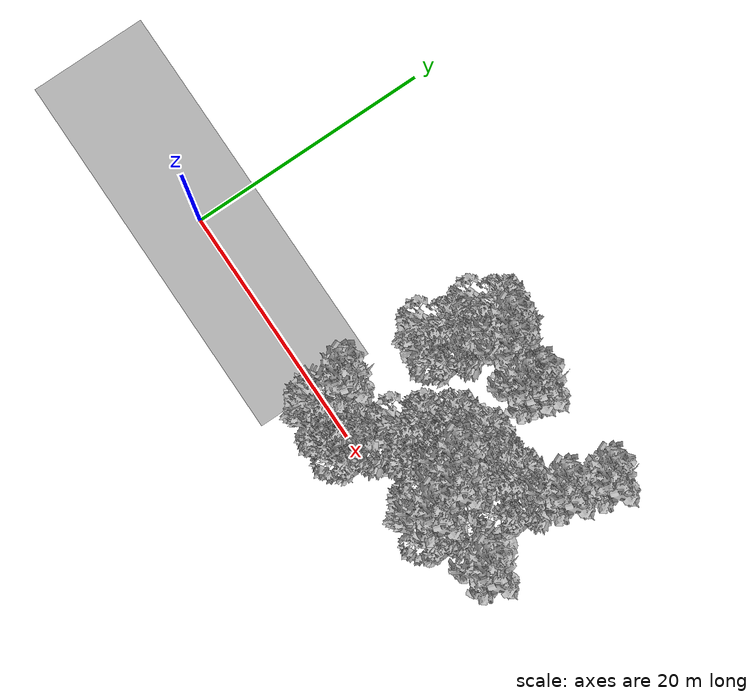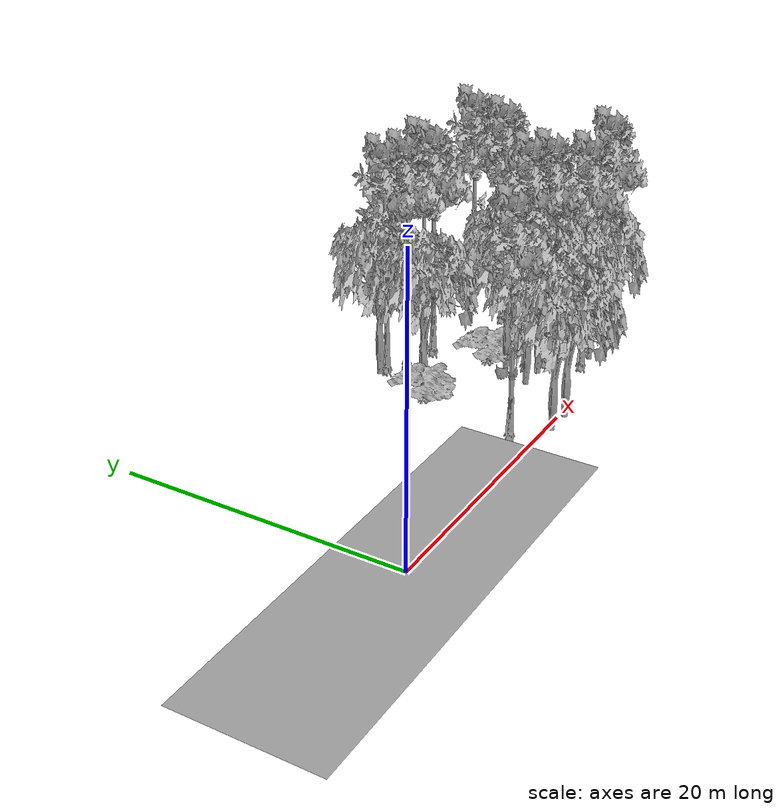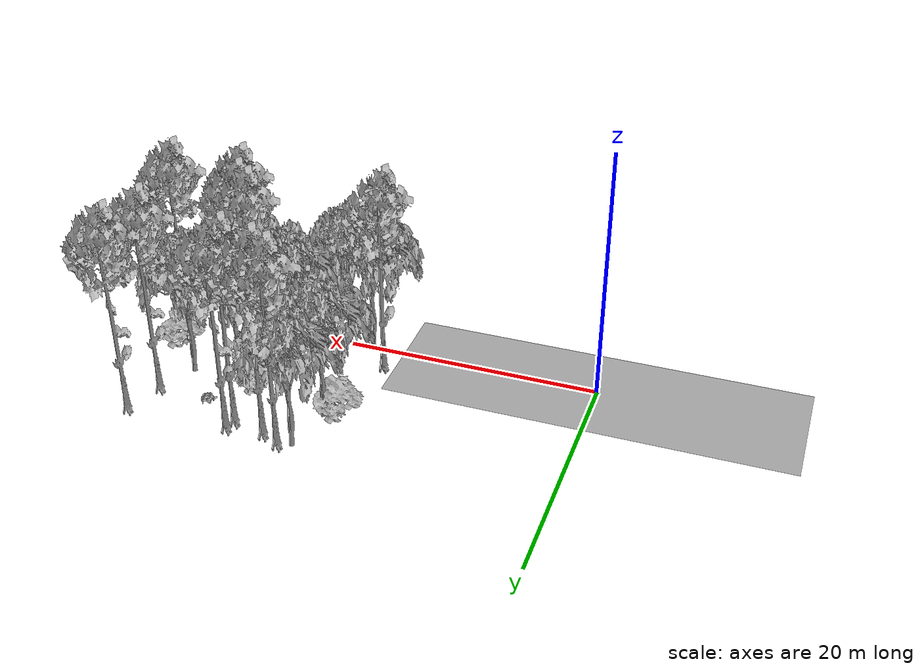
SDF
<sdf version="1.7">
 <world name="default">
  <model name="ground_plane">
   <static>1</static>
   <link name="link">
    <collision name="collision">
     <pose>-50 0 0 0 -0 0</pose>
     <geometry><plane><normal>0 0 1</normal><size>100 100</size></plane></geometry>
     <surface><contact><ode><min_depth>0.01</min_depth><max_vel>0</max_vel></ode></contact></surface>
    </collision>
    <visual name="grass">
     <cast_shadows>0</cast_shadows>
     <geometry>
      <mesh>
       <scale>0.5814285714285714 0.18142857142857144 0.1</scale>
       <uri>file://grass_plane/meshes/grass_plane.dae</uri>
      </mesh>
     </geometry>
    </visual>
   </link>
  </model>
  <model name="Tree 41">
   <static>1</static>
   <pose>17.475562049585122 8.796247360084557 0 1.57079 -0 0</pose>
   <link name="link">
    <collision name="collision">
     <geometry><mesh><scale>4 2.5 4</scale><uri>model://tree_1/meshes/tree_1.obj</uri></mesh></geometry>
    </collision>
    <visual name="visual">
     <geometry><mesh><scale>4 2.5 4</scale><uri>model://tree_1/meshes/tree_1.obj</uri></mesh></geometry>
    </visual>
   </link>
  </model>
  <model name="Tree 51">
   <static>1</static>
   <pose>27.102140427484386 4.259527870311061 0 1.57079 -0 0</pose>
   <link name="link">
    <collision name="collision">
     <geometry><mesh><scale>3.5 5 3.5</scale><uri>model://tree_9/meshes/tree_9.obj</uri></mesh></geometry>
    </collision>
    <visual name="visual">
     <geometry><mesh><scale>3.5 5 3.5</scale><uri>model://tree_9/meshes/tree_9.obj</uri></mesh></geometry>
    </visual>
   </link>
  </model>
  <model name="Tree 53">
   <static>1</static>
   <pose>32.85173136447975 13.201151705042417 0 1.57079 -0 0</pose>
   <link name="link">
    <collision name="collision">
     <geometry><mesh><scale>3.5 5 3.5</scale><uri>model://tree_9/meshes/tree_9.obj</uri></mesh></geometry>
    </collision>
    <visual name="visual">
     <geometry><mesh><scale>3.5 5 3.5</scale><uri>model://tree_9/meshes/tree_9.obj</uri></mesh></geometry>
    </visual>
   </link>
  </model>
  <model name="Tree 63">
   <static>1</static>
   <pose>30.214269453395474 7.372522549735457 0 1.57079 -0 0</pose>
   <link name="link">
    <collision name="collision">
     <geometry><mesh><scale>3.5 5 3.5</scale><uri>model://tree_2/meshes/tree_2.obj</uri></mesh></geometry>
    </collision>
    <visual name="visual">
     <geometry><mesh><scale>3.5 5 3.5</scale><uri>model://tree_2/meshes/tree_2.obj</uri></mesh></geometry>
    </visual>
   </link>
  </model>
  <model name="Tree 64">
   <static>1</static>
   <pose>16.69222684285866 1.8727051117373499 0 1.57079 -0 0</pose>
   <link name="link">
    <collision name="collision">
     <geometry><mesh><scale>3.5 5 3.5</scale><uri>model://tree_9/meshes/tree_9.obj</uri></mesh></geometry>
    </collision>
    <visual name="visual">
     <geometry><mesh><scale>3.5 5 3.5</scale><uri>model://tree_9/meshes/tree_9.obj</uri></mesh></geometry>
    </visual>
   </link>
  </model>
  <model name="Tree 97">
   <static>1</static>
   <pose>20.38719067207478 13.473502745662739 0 1.57079 -0 0</pose>
   <link name="link">
    <collision name="collision">
     <geometry><mesh><scale>3.5 5 3.5</scale><uri>model://tree_9/meshes/tree_9.obj</uri></mesh></geometry>
    </collision>
    <visual name="visual">
     <geometry><mesh><scale>3.5 5 3.5</scale><uri>model://tree_9/meshes/tree_9.obj</uri></mesh></geometry>
    </visual>
   </link>
  </model>
  <model name="Tree 100">
   <static>1</static>
   <pose>27.995859282677642 1.848697572924955 0 1.57079 -0 0</pose>
   <link name="link">
    <collision name="collision">
     <geometry><mesh><scale>3.5 5 3.5</scale><uri>model://tree_9/meshes/tree_9.obj</uri></mesh></geometry>
    </collision>
    <visual name="visual">
     <geometry><mesh><scale>3.5 5 3.5</scale><uri>model://tree_9/meshes/tree_9.obj</uri></mesh></geometry>
    </visual>
   </link>
  </model>
  <model name="Tree 117">
   <static>1</static>
   <pose>31.840548707857096 10.149907670665737 0 1.57079 -0 0</pose>
   <link name="link">
    <collision name="collision">
     <geometry><mesh><scale>3.5 5 3.5</scale><uri>model://tree_9/meshes/tree_9.obj</uri></mesh></geometry>
    </collision>
    <visual name="visual">
     <geometry><mesh><scale>3.5 5 3.5</scale><uri>model://tree_9/meshes/tree_9.obj</uri></mesh></geometry>
    </visual>
   </link>
  </model>
  <model name="Tree 119">
   <static>1</static>
   <pose>23.038592065510528 3.8503750211051866 0 1.57079 -0 0</pose>
   <link name="link">
    <collision name="collision">
     <geometry><mesh><scale>3.5 5 3.5</scale><uri>model://tree_2/meshes/tree_2.obj</uri></mesh></geometry>
    </collision>
    <visual name="visual">
     <geometry><mesh><scale>3.5 5 3.5</scale><uri>model://tree_2/meshes/tree_2.obj</uri></mesh></geometry>
    </visual>
   </link>
  </model>
  <model name="Tree 153">
   <static>1</static>
   <pose>18.33977524674306 -0.3360170800980562 0 1.57079 -0 0</pose>
   <link name="link">
    <collision name="collision">
     <geometry><mesh><scale>3.5 5 3.5</scale><uri>model://tree_2/meshes/tree_2.obj</uri></mesh></geometry>
    </collision>
    <visual name="visual">
     <geometry><mesh><scale>3.5 5 3.5</scale><uri>model://tree_2/meshes/tree_2.obj</uri></mesh></geometry>
    </visual>
   </link>
  </model>
  <model name="Tree 171">
   <static>1</static>
   <pose>19.122009015469843 13.346835189542073 0 1.57079 -0 0</pose>
   <link name="link">
    <collision name="collision">
     <geometry><mesh><scale>3.5 5 3.5</scale><uri>model://tree_2/meshes/tree_2.obj</uri></mesh></geometry>
    </collision>
    <visual name="visual">
     <geometry><mesh><scale>3.5 5 3.5</scale><uri>model://tree_2/meshes/tree_2.obj</uri></mesh></geometry>
    </visual>
   </link>
  </model>
  <model name="Tree 173">
   <static>1</static>
   <pose>25.866168044715536 5.2408018889622205 0 1.57079 -0 0</pose>
   <link name="link">
    <collision name="collision">
     <geometry><mesh><scale>3.5 5 3.5</scale><uri>model://tree_9/meshes/tree_9.obj</uri></mesh></geometry>
    </collision>
    <visual name="visual">
     <geometry><mesh><scale>3.5 5 3.5</scale><uri>model://tree_9/meshes/tree_9.obj</uri></mesh></geometry>
    </visual>
   </link>
  </model>
  <model name="Tree 174">
   <static>1</static>
   <pose>21.853430754740828 12.719035217943006 0 1.57079 -0 0</pose>
   <link name="link">
    <collision name="collision">
     <geometry><mesh><scale>3.5 5 3.5</scale><uri>model://tree_9/meshes/tree_9.obj</uri></mesh></geometry>
    </collision>
    <visual name="visual">
     <geometry><mesh><scale>3.5 5 3.5</scale><uri>model://tree_9/meshes/tree_9.obj</uri></mesh></geometry>
    </visual>
   </link>
  </model>
  <model name="Tree 176">
   <static>1</static>
   <pose>24.557155268860996 7.589446175275281 0 1.57079 -0 0</pose>
   <link name="link">
    <collision name="collision">
     <geometry><mesh><scale>4 2.5 4</scale><uri>model://tree_1/meshes/tree_1.obj</uri></mesh></geometry>
    </collision>
    <visual name="visual">
     <geometry><mesh><scale>4 2.5 4</scale><uri>model://tree_1/meshes/tree_1.obj</uri></mesh></geometry>
    </visual>
   </link>
  </model>
  <model name="Tree 182">
   <static>1</static>
   <pose>33.06009237810818 4.019877777741655 0 1.57079 -0 0</pose>
   <link name="link">
    <collision name="collision">
     <geometry><mesh><scale>4 2.5 4</scale><uri>model://tree_1/meshes/tree_1.obj</uri></mesh></geometry>
    </collision>
    <visual name="visual">
     <geometry><mesh><scale>4 2.5 4</scale><uri>model://tree_1/meshes/tree_1.obj</uri></mesh></geometry>
    </visual>
   </link>
  </model>
  <model name="Tree 183">
   <static>1</static>
   <pose>28.702795628586287 1.5941136567140646 0 1.57079 -0 0</pose>
   <link name="link">
    <collision name="collision">
     <geometry><mesh><scale>3.5 5 3.5</scale><uri>model://tree_2/meshes/tree_2.obj</uri></mesh></geometry>
    </collision>
    <visual name="visual">
     <geometry><mesh><scale>3.5 5 3.5</scale><uri>model://tree_2/meshes/tree_2.obj</uri></mesh></geometry>
    </visual>
   </link>
  </model>
  <model name="Tree 186">
   <static>1</static>
   <pose>24.505342321829104 12.028805659602142 0 1.57079 -0 0</pose>
   <link name="link">
    <collision name="collision">
     <geometry><mesh><scale>3.5 5 3.5</scale><uri>model://tree_9/meshes/tree_9.obj</uri></mesh></geometry>
    </collision>
    <visual name="visual">
     <geometry><mesh><scale>3.5 5 3.5</scale><uri>model://tree_9/meshes/tree_9.obj</uri></mesh></geometry>
    </visual>
   </link>
  </model>
  <model name="Tree 190">
   <static>1</static>
   <pose>20.33330992934947 -0.34842437672876336 0 1.57079 -0 0</pose>
   <link name="link">
    <collision name="collision">
     <geometry><mesh><scale>3.5 5 3.5</scale><uri>model://tree_2/meshes/tree_2.obj</uri></mesh></geometry>
    </collision>
    <visual name="visual">
     <geometry><mesh><scale>3.5 5 3.5</scale><uri>model://tree_2/meshes/tree_2.obj</uri></mesh></geometry>
    </visual>
   </link>
  </model>
  <model name="Tree 198">
   <static>1</static>
   <pose>33.35836851439048 2.6683824316653855 0 1.57079 -0 0</pose>
   <link name="link">
    <collision name="collision">
     <geometry><mesh><scale>3.5 5 3.5</scale><uri>model://tree_9/meshes/tree_9.obj</uri></mesh></geometry>
    </collision>
    <visual name="visual">
     <geometry><mesh><scale>3.5 5 3.5</scale><uri>model://tree_9/meshes/tree_9.obj</uri></mesh></geometry>
    </visual>
   </link>
  </model>
  <model name="Tree 203">
   <static>1</static>
   <pose>26.410474648175352 7.057136493800318 0 1.57079 -0 0</pose>
   <link name="link">
    <collision name="collision">
     <geometry><mesh><scale>3.5 5 3.5</scale><uri>model://tree_2/meshes/tree_2.obj</uri></mesh></geometry>
    </collision>
    <visual name="visual">
     <geometry><mesh><scale>3.5 5 3.5</scale><uri>model://tree_2/meshes/tree_2.obj</uri></mesh></geometry>
    </visual>
   </link>
  </model>
  <model name="Tree 215">
   <static>1</static>
   <pose>24.872243160663345 3.8443377384668693 0 1.57079 -0 0</pose>
   <link name="link">
    <collision name="collision">
     <geometry><mesh><scale>3.5 5 3.5</scale><uri>model://tree_2/meshes/tree_2.obj</uri></mesh></geometry>
    </collision>
    <visual name="visual">
     <geometry><mesh><scale>3.5 5 3.5</scale><uri>model://tree_2/meshes/tree_2.obj</uri></mesh></geometry>
    </visual>
   </link>
  </model>
  <model name="Tree 254">
   <static>1</static>
   <pose>24.747825959174833 12.932734179264404 0 1.57079 -0 0</pose>
   <link name="link">
    <collision name="collision">
     <geometry><mesh><scale>3.5 5 3.5</scale><uri>model://tree_9/meshes/tree_9.obj</uri></mesh></geometry>
    </collision>
    <visual name="visual">
     <geometry><mesh><scale>3.5 5 3.5</scale><uri>model://tree_9/meshes/tree_9.obj</uri></mesh></geometry>
    </visual>
   </link>
  </model>
  <model name="Tree 258">
   <static>1</static>
   <pose>18.377059883370336 9.410239708512478 0 1.57079 -0 0</pose>
   <link name="link">
    <collision name="collision">
     <geometry><mesh><scale>3.5 5 3.5</scale><uri>model://tree_2/meshes/tree_2.obj</uri></mesh></geometry>
    </collision>
    <visual name="visual">
     <geometry><mesh><scale>3.5 5 3.5</scale><uri>model://tree_2/meshes/tree_2.obj</uri></mesh></geometry>
    </visual>
   </link>
  </model>
  <model name="Tree 284">
   <static>1</static>
   <pose>24.176853429011913 5.968641476927463 0 1.57079 -0 0</pose>
   <link name="link">
    <collision name="collision">
     <geometry><mesh><scale>3.5 5 3.5</scale><uri>model://tree_2/meshes/tree_2.obj</uri></mesh></geometry>
    </collision>
    <visual name="visual">
     <geometry><mesh><scale>3.5 5 3.5</scale><uri>model://tree_2/meshes/tree_2.obj</uri></mesh></geometry>
    </visual>
   </link>
  </model>
  <model name="Bush 2">
   <static>1</static>
   <pose>27.546397347222666 10.332852385038489 0 1.57079 -0 0</pose>
   <link name="link">
    <collision name="collision">
     <geometry><mesh><scale>2 2 2</scale><uri>model://bush_2/meshes/bush_2.obj</uri></mesh></geometry>
     <surface><contact><collide_without_contact>false</collide_without_contact></contact></surface>
    </collision>
    <visual name="visual">
     <geometry><mesh><scale>2 2 2</scale><uri>model://bush_2/meshes/bush_2.obj</uri></mesh></geometry>
    </visual>
   </link>
  </model>
 </world>
</sdf>
